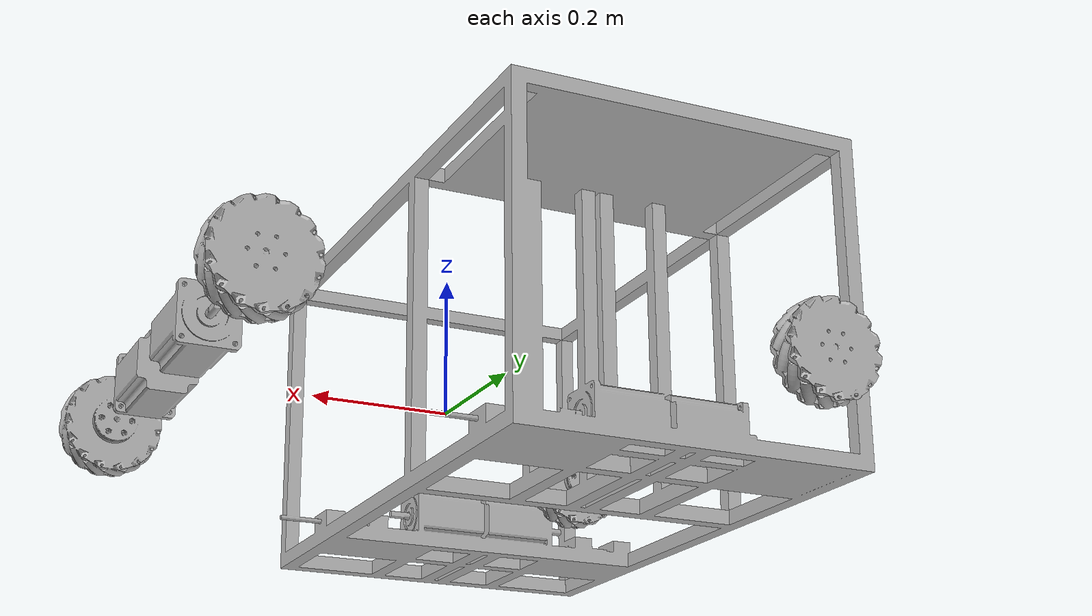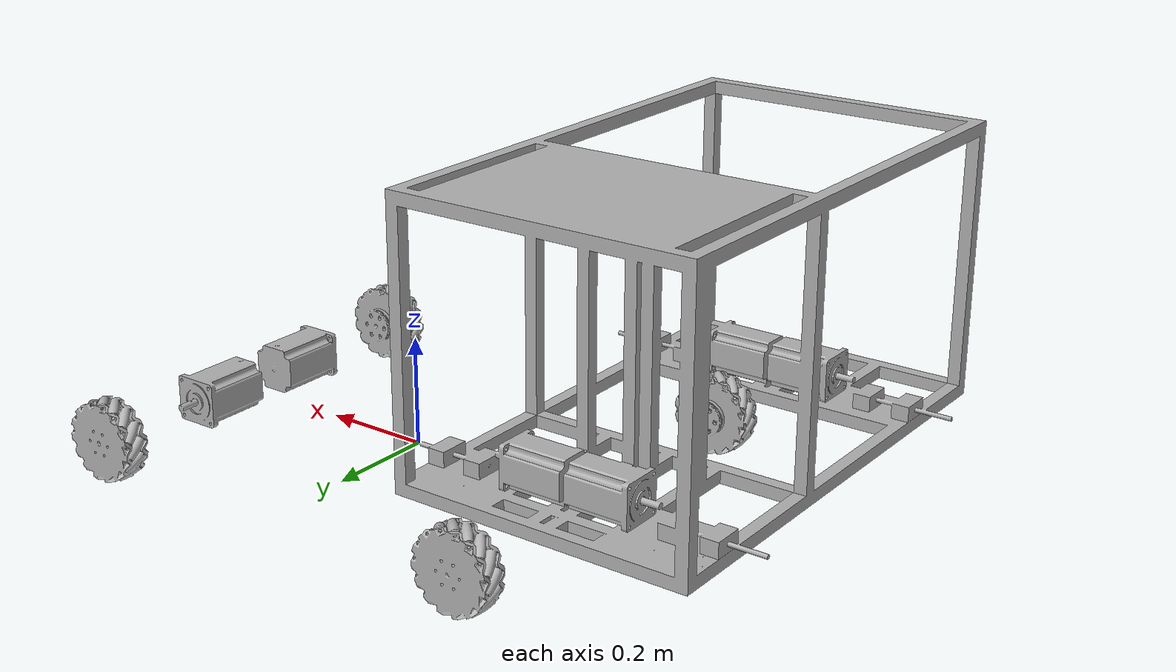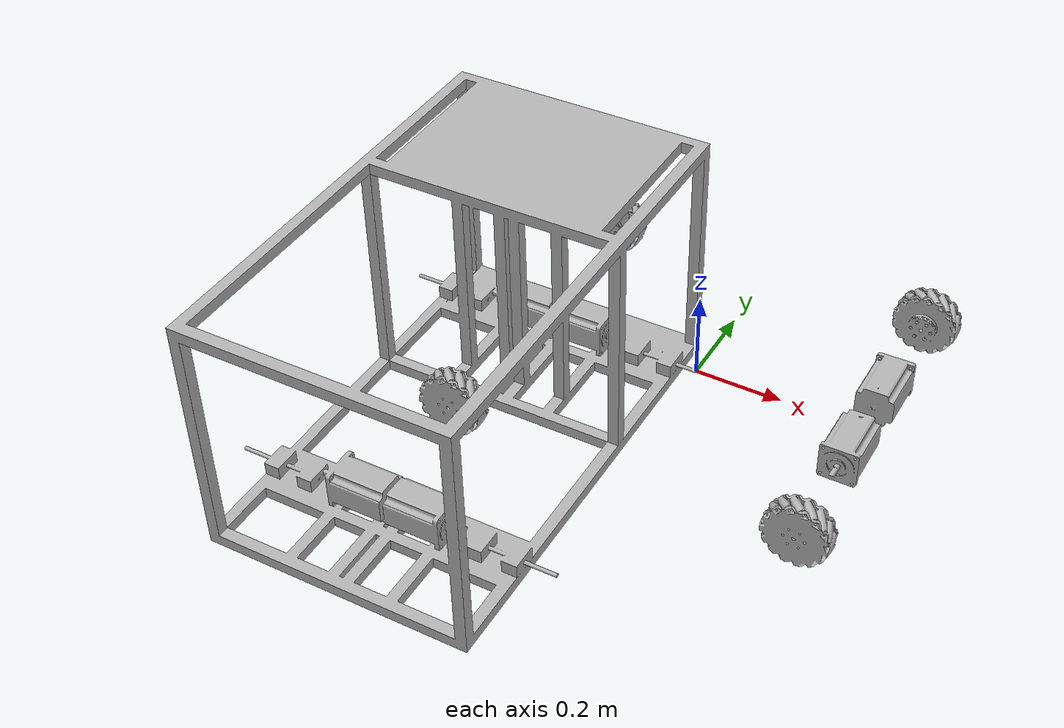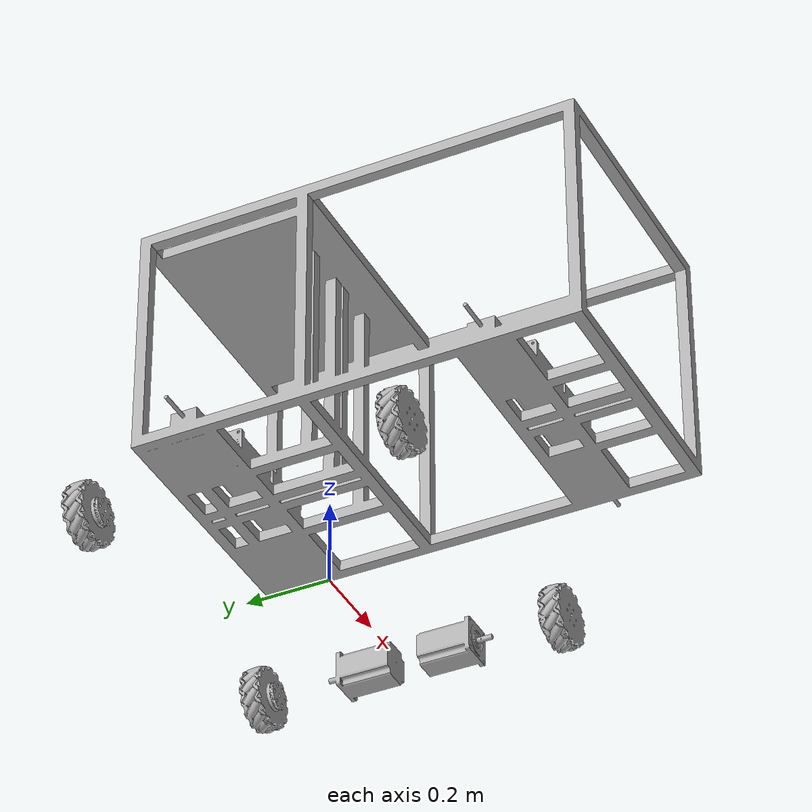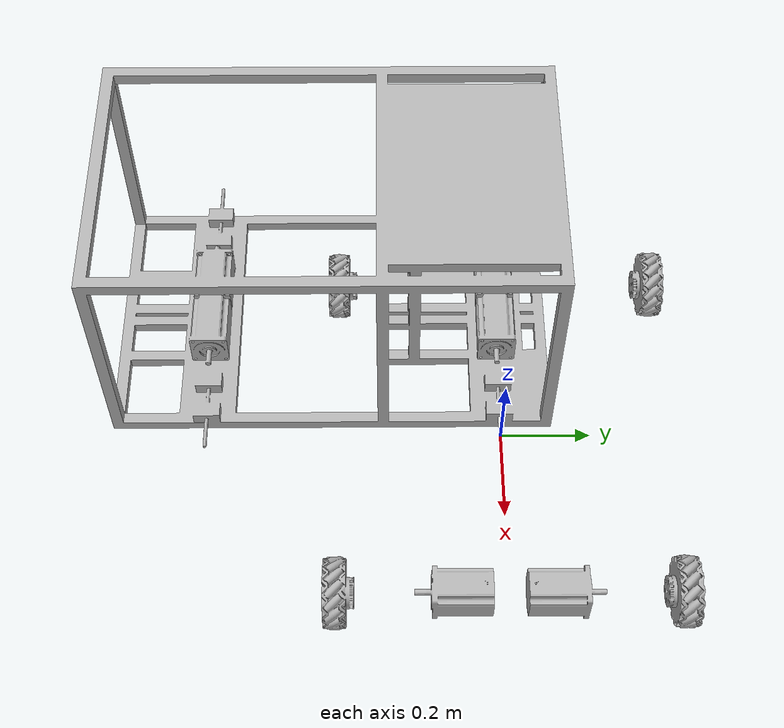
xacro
<?xml version="1.0" ?>
<robot name="base_export" xmlns:xacro="http://www.ros.org/wiki/xacro">

<xacro:include filename="$(find base_export_description)/urdf/materials.xacro" />
<xacro:include filename="$(find base_export_description)/urdf/base_export.trans" />
<xacro:include filename="$(find base_export_description)/urdf/base_export.gazebo" />
<link name="base_link">
  <inertial>
    <origin rpy="0 0 0" xyz="0.004639774814419823 1.4771468453425644e-05 0.22530002486564402"/>
    <mass value="90.2870635836035"/>
    <inertia ixx="10.456164" ixy="1.4e-05" ixz="-0.360506" iyy="16.958749" iyz="0.000256" izz="18.430844"/>
  </inertial>
  <visual>
    <origin rpy="0 0 0" xyz="0 0 0"/>
    <geometry>
      <mesh filename="package://base_export_description/meshes/base_link.stl" scale="0.001 0.001 0.001"/>
    </geometry>
    <material name="silver"/>
  </visual>
  <collision>
    <origin rpy="0 0 0" xyz="0 0 0"/>
    <geometry>
      <mesh filename="package://base_export_description/meshes/base_link.stl" scale="0.001 0.001 0.001"/>
    </geometry>
  </collision>
</link>

<link name="Nema34_1">
  <inertial>
    <origin rpy="0 0 0" xyz="-0.0006437918942043819 0.09929626309979397 0.0006420516696096987"/>
    <mass value="6.652128143458834"/>
    <inertia ixx="0.012865" ixy="1e-06" ixz="-0.0" iyy="0.007046" iyz="0.0" izz="0.012866"/>
  </inertial>
  <visual>
    <origin rpy="0 0 0" xyz="-0.394801 0.200178 -0.033729"/>
    <geometry>
      <mesh filename="package://base_export_description/meshes/Nema34_1.stl" scale="0.001 0.001 0.001"/>
    </geometry>
    <material name="silver"/>
  </visual>
  <collision>
    <origin rpy="0 0 0" xyz="-0.394801 0.200178 -0.033729"/>
    <geometry>
      <mesh filename="package://base_export_description/meshes/Nema34_1.stl" scale="0.001 0.001 0.001"/>
    </geometry>
  </collision>
</link>

<link name="Nema34__1__1">
  <inertial>
    <origin rpy="0 0 0" xyz="0.0006436418750596085 -0.09929646649528492 0.0006420516696081444"/>
    <mass value="6.652128143458834"/>
    <inertia ixx="0.012865" ixy="1e-06" ixz="0.0" iyy="0.007046" iyz="-0.0" izz="0.012866"/>
  </inertial>
  <visual>
    <origin rpy="0 0 0" xyz="-0.394579 -0.200822 -0.033729"/>
    <geometry>
      <mesh filename="package://base_export_description/meshes/Nema34__1__1.stl" scale="0.001 0.001 0.001"/>
    </geometry>
    <material name="silver"/>
  </visual>
  <collision>
    <origin rpy="0 0 0" xyz="-0.394579 -0.200822 -0.033729"/>
    <geometry>
      <mesh filename="package://base_export_description/meshes/Nema34__1__1.stl" scale="0.001 0.001 0.001"/>
    </geometry>
  </collision>
</link>

<link name="Double_Wheel__Thin__v11_v3_1">
  <inertial>
    <origin rpy="0 0 0" xyz="-3.5966591938052517e-07 0.027463106395432424 3.514880312152635e-07"/>
    <mass value="3.260021800926923"/>
    <inertia ixx="0.005841" ixy="-0.0" ixz="-0.0" iyy="0.009383" iyz="0.0" izz="0.005841"/>
  </inertial>
  <visual>
    <origin rpy="0 0 0" xyz="-0.394801 0.390178 -0.033729"/>
    <geometry>
      <mesh filename="package://base_export_description/meshes/Double_Wheel__Thin__v11_v3_1.stl" scale="0.001 0.001 0.001"/>
    </geometry>
    <material name="silver"/>
  </visual>
  <collision>
    <origin rpy="0 0 0" xyz="-0.394801 0.390178 -0.033729"/>
    <geometry>
      <mesh filename="package://base_export_description/meshes/Double_Wheel__Thin__v11_v3_1.stl" scale="0.001 0.001 0.001"/>
    </geometry>
  </collision>
</link>

<link name="Double_Wheel__Thin__v11_v3__1__1">
  <inertial>
    <origin rpy="0 0 0" xyz="2.096467722756401e-07 -0.02746330979092404 3.5148803025075726e-07"/>
    <mass value="3.260021800926923"/>
    <inertia ixx="0.005841" ixy="-0.0" ixz="0.0" iyy="0.009383" iyz="-0.0" izz="0.005841"/>
  </inertial>
  <visual>
    <origin rpy="0 0 0" xyz="-0.394579 -0.390822 -0.033729"/>
    <geometry>
      <mesh filename="package://base_export_description/meshes/Double_Wheel__Thin__v11_v3__1__1.stl" scale="0.001 0.001 0.001"/>
    </geometry>
    <material name="silver"/>
  </visual>
  <collision>
    <origin rpy="0 0 0" xyz="-0.394579 -0.390822 -0.033729"/>
    <geometry>
      <mesh filename="package://base_export_description/meshes/Double_Wheel__Thin__v11_v3__1__1.stl" scale="0.001 0.001 0.001"/>
    </geometry>
  </collision>
</link>

<link name="Double_Wheel__Thin__v11_v3__2__1">
  <inertial>
    <origin rpy="0 0 0" xyz="2.0964677233115125e-07 -0.027463309790926815 3.51488031312408e-07"/>
    <mass value="3.260021800926923"/>
    <inertia ixx="0.005841" ixy="-0.0" ixz="0.0" iyy="0.009383" iyz="-0.0" izz="0.005841"/>
  </inertial>
  <visual>
    <origin rpy="0 0 0" xyz="0.395421 -0.390822 -0.033729"/>
    <geometry>
      <mesh filename="package://base_export_description/meshes/Double_Wheel__Thin__v11_v3__2__1.stl" scale="0.001 0.001 0.001"/>
    </geometry>
    <material name="silver"/>
  </visual>
  <collision>
    <origin rpy="0 0 0" xyz="0.395421 -0.390822 -0.033729"/>
    <geometry>
      <mesh filename="package://base_export_description/meshes/Double_Wheel__Thin__v11_v3__2__1.stl" scale="0.001 0.001 0.001"/>
    </geometry>
  </collision>
</link>

<link name="Double_Wheel__Thin__v11_v3__3__1">
  <inertial>
    <origin rpy="0 0 0" xyz="-3.596659204907482e-07 0.02746310639543431 3.514880312152635e-07"/>
    <mass value="3.260021800926923"/>
    <inertia ixx="0.005841" ixy="-0.0" ixz="-0.0" iyy="0.009383" iyz="0.0" izz="0.005841"/>
  </inertial>
  <visual>
    <origin rpy="0 0 0" xyz="0.395199 0.390178 -0.033729"/>
    <geometry>
      <mesh filename="package://base_export_description/meshes/Double_Wheel__Thin__v11_v3__3__1.stl" scale="0.001 0.001 0.001"/>
    </geometry>
    <material name="silver"/>
  </visual>
  <collision>
    <origin rpy="0 0 0" xyz="0.395199 0.390178 -0.033729"/>
    <geometry>
      <mesh filename="package://base_export_description/meshes/Double_Wheel__Thin__v11_v3__3__1.stl" scale="0.001 0.001 0.001"/>
    </geometry>
  </collision>
</link>

<joint name="Rigid9" type="fixed">
  <origin rpy="0 0 0" xyz="0.394801 -0.200178 0.033729"/>
  <parent link="base_link"/>
  <child link="Nema34_1"/>
</joint>

<joint name="Rigid10" type="fixed">
  <origin rpy="0 0 0" xyz="0.394579 0.200822 0.033729"/>
  <parent link="base_link"/>
  <child link="Nema34__1__1"/>
</joint>

<joint name="Rev11" type="continuous">
  <origin rpy="0 0 0" xyz="0.394801 -0.390178 0.033729"/>
  <parent link="base_link"/>
  <child link="Double_Wheel__Thin__v11_v3_1"/>
  <axis xyz="0.0 1.0 -0.0"/>
</joint>

<joint name="Rev12" type="continuous">
  <origin rpy="0 0 0" xyz="0.394579 0.390822 0.033729"/>
  <parent link="base_link"/>
  <child link="Double_Wheel__Thin__v11_v3__1__1"/>
  <axis xyz="0.0 -1.0 -0.0"/>
</joint>

<joint name="Rev13" type="continuous">
  <origin rpy="0 0 0" xyz="-0.395421 0.390822 0.033729"/>
  <parent link="base_link"/>
  <child link="Double_Wheel__Thin__v11_v3__2__1"/>
  <axis xyz="0.0 -1.0 -0.0"/>
</joint>

<joint name="Rev14" type="continuous">
  <origin rpy="0 0 0" xyz="-0.395199 -0.390178 0.033729"/>
  <parent link="base_link"/>
  <child link="Double_Wheel__Thin__v11_v3__3__1"/>
  <axis xyz="0.0 1.0 -0.0"/>
</joint>

</robot>

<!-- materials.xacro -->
<robot name="base_export" xmlns:xacro="http://www.ros.org/wiki/xacro" >

<material name="silver">
  <color rgba="0.700 0.700 0.700 1.000"/>
</material>

</robot>

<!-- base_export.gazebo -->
<robot name="base_export" xmlns:xacro="http://www.ros.org/wiki/xacro" >

<xacro:property name="body_color" value="Gazebo/Silver" />

<gazebo>
  <plugin filename="libgazebo_ros_control.so" name="control"/>
</gazebo>
<gazebo reference="base_link">
  <material>${body_color}</material>
  <mu1>0.2</mu1>
  <mu2>0.2</mu2>
  <selfCollide>true</selfCollide>
  <gravity>true</gravity>
</gazebo>

<gazebo reference="Nema34_1">
  <material>${body_color}</material>
  <mu1>0.2</mu1>
  <mu2>0.2</mu2>
  <selfCollide>true</selfCollide>
</gazebo>

<gazebo reference="Nema34__1__1">
  <material>${body_color}</material>
  <mu1>0.2</mu1>
  <mu2>0.2</mu2>
  <selfCollide>true</selfCollide>
</gazebo>

<gazebo reference="Double_Wheel__Thin__v11_v3_1">
  <material>${body_color}</material>
  <mu1>0.2</mu1>
  <mu2>0.2</mu2>
  <selfCollide>true</selfCollide>
</gazebo>

<gazebo reference="Double_Wheel__Thin__v11_v3__1__1">
  <material>${body_color}</material>
  <mu1>0.2</mu1>
  <mu2>0.2</mu2>
  <selfCollide>true</selfCollide>
</gazebo>

<gazebo reference="Double_Wheel__Thin__v11_v3__2__1">
  <material>${body_color}</material>
  <mu1>0.2</mu1>
  <mu2>0.2</mu2>
  <selfCollide>true</selfCollide>
</gazebo>

<gazebo reference="Double_Wheel__Thin__v11_v3__3__1">
  <material>${body_color}</material>
  <mu1>0.2</mu1>
  <mu2>0.2</mu2>
  <selfCollide>true</selfCollide>
</gazebo>

</robot>
